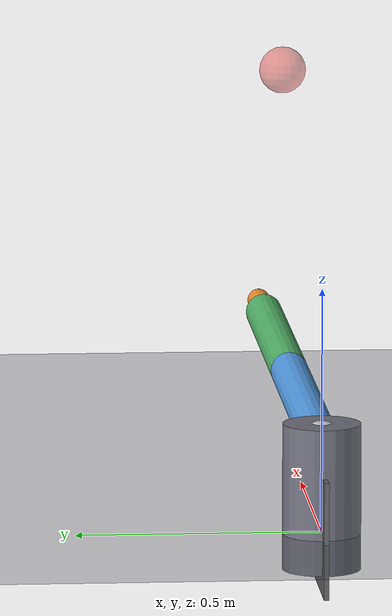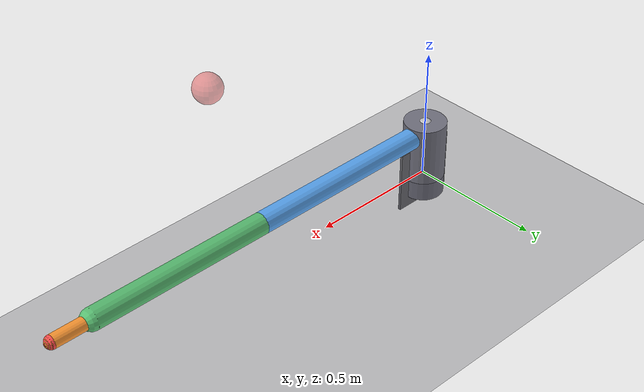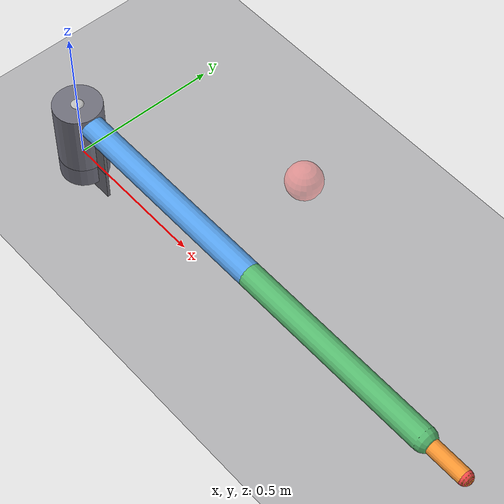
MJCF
<mujoco model="ironarm_4dof">
  <compiler angle="radian"/>

  <visual>
    <global offwidth="2048" offheight="2048"/>
  </visual>

  <worldbody>
    <!-- Floor -->
    <geom type="plane" size="3 3 0.1" rgba="0.28 0.28 0.32 1"/>

    <!-- Base pedestal -->
    <body name="base" pos="0 0 0">
      <geom type="cylinder" size="0.08 0.15" pos="0 0 0.075" rgba="0.45 0.45 0.50 1"/>
      <geom type="box" size="0.12 0.005 0.12" pos="0 0 0.005" rgba="0.40 0.40 0.42 1"/>
    </body>

    <!-- Waist: j0 around Z -->
    <body name="waist" pos="0 0 0.15">
      <joint name="j0" type="hinge" axis="0 0 1"/>
      <geom type="cylinder" size="0.06 0.06" rgba="0.55 0.55 0.60 1"/>

      <!-- Shoulder: j1 around Y -->
      <body name="shoulder" pos="0 0 0.03">
        <joint name="j1" type="hinge" axis="0 1 0" range="-2.0 2.0"/>
        <geom type="sphere" size="0.05" rgba="0.75 0.75 0.75 1"/>

        <!-- Upper arm L1 = 0.8 -->
        <body name="upper_arm" pos="0 0 0">
          <geom type="capsule" size="0.04" fromto="0 0 0 0.8 0 0" rgba="0.35 0.65 0.95 1"/>

          <!-- Elbow: j2 around Y -->
          <body name="elbow" pos="0.8 0 0">
            <joint name="j2" type="hinge" axis="0 1 0" range="-0.5 3.0"/>
            <geom type="sphere" size="0.04" rgba="0.75 0.75 0.75 1"/>

            <!-- Forearm L2 = 0.7 -->
            <body name="forearm" pos="0 0 0">
              <geom type="capsule" size="0.04" fromto="0 0 0 0.7 0 0" rgba="0.35 0.75 0.45 1"/>

              <!-- Wrist: j3 around Y -->
              <body name="wrist" pos="0.7 0 0">
                <joint name="j3" type="hinge" axis="0 1 0" range="-2.0 2.0"/>
                <geom type="sphere" size="0.03" rgba="0.85 0.85 0.85 1"/>

                <!-- Wrist extension L3 = 0.15 -->
                <body name="wrist_ext" pos="0 0 0">
                  <geom type="capsule" size="0.025" fromto="0 0 0 0.15 0 0" rgba="1.0 0.6 0.2 1"/>

                  <!-- End-effector tip -->
                  <body name="ee" pos="0.15 0 0">
                    <geom type="sphere" size="0.025" rgba="1.0 0.3 0.3 0.9"/>
                  </body>
                </body>
              </body>
            </body>
          </body>
        </body>
      </body>
    </body>

    <!-- Target marker -->
    <body name="target" pos="1.0 0 0.8">
      <freejoint/>
      <geom type="sphere" size="0.05" rgba="0.9 0.3 0.3 0.5"/>
    </body>
  </worldbody>
</mujoco>
